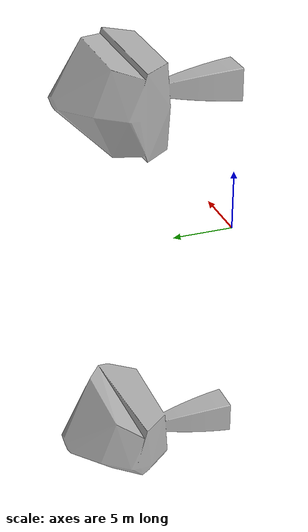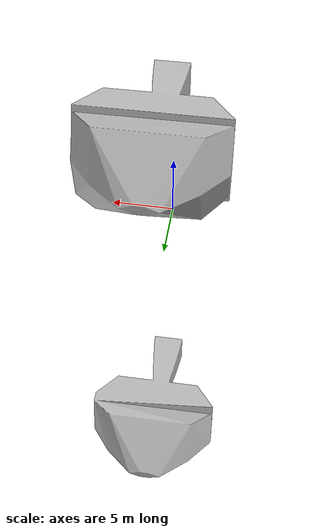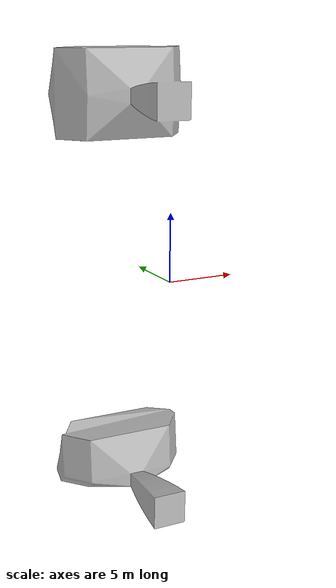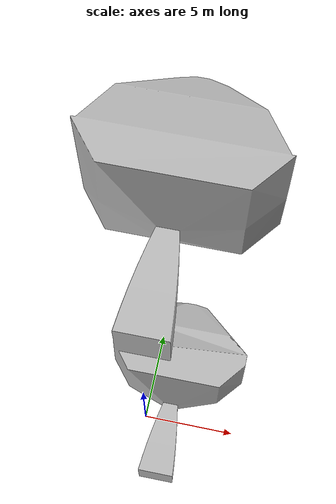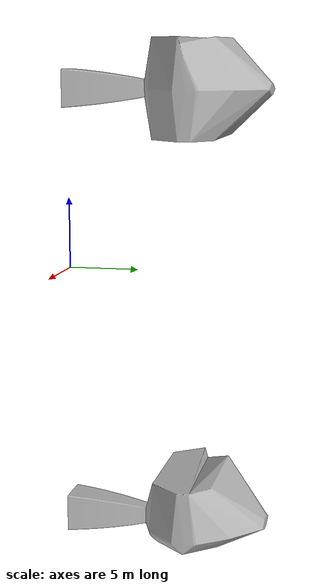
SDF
<?xml version="1.0"?>
<sdf version="1.9">
  <model name="transmission_tower">
    <static>true</static>
    <link name="link">
      <visual name="visual">
        <geometry>
          <mesh><uri>model://transmission_tower/meshes/tower_model_3.dae</uri></mesh>
        </geometry>
      </visual>

      <!-- Exact bounding boxes derived from the mesh height bands (prevents OBJ crashing) -->
      <!-- Exact mesh collision mapping to the visual model -->
      <collision name="collision">
        <geometry>
          <mesh>
            <uri>model://transmission_tower/meshes/tower_collision.stl</uri>
          </mesh>
        </geometry>
      </collision>
    </link>
  </model>
</sdf>
